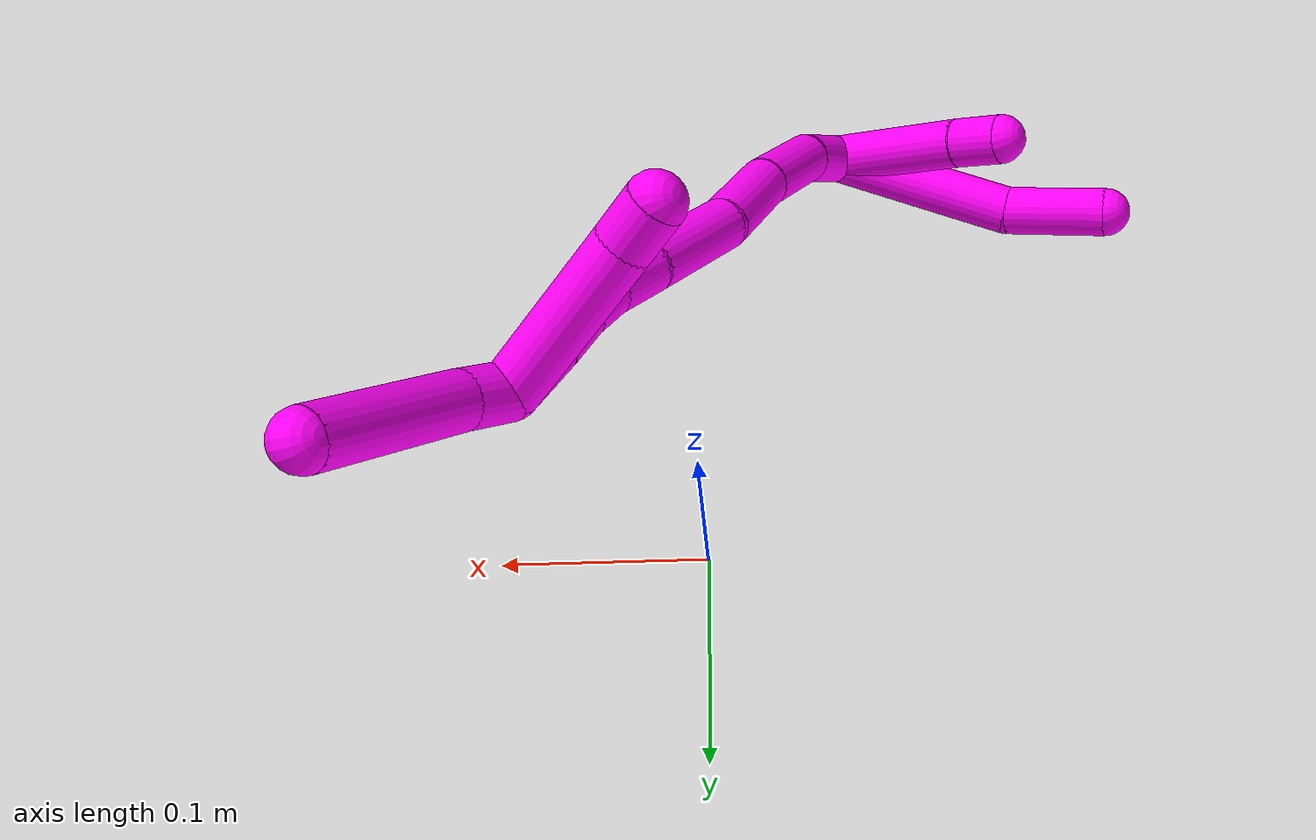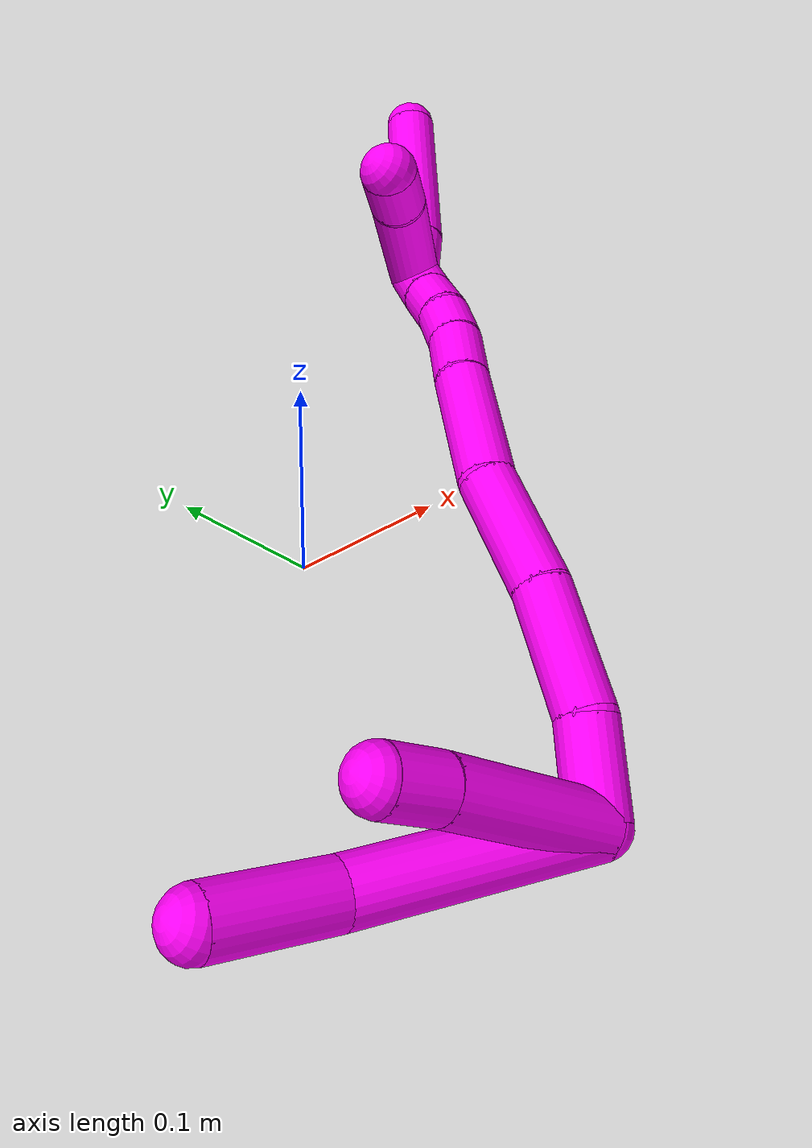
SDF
<sdf version="1.7">
 <world name="default">
  <model name="10">
   <static>0</static>
   <link name="10">
    <collision name="collision-cylinder-e_1_2_8">
     <pose>-0.018322 0.021084 0.04032 -0.481811 -0.382819 0.095144</pose>
     <geometry><cylinder><radius>0.0125</radius><length>0.098101</length></cylinder></geometry>
     <surface>
      <friction><ode><mu>1.16</mu><mu2>1.16</mu2><slip1>0</slip1><slip2>0</slip2></ode></friction>
      <contact><ode><kp>1e+06</kp><kd>1</kd><max_vel>0</max_vel><min_depth>0.001</min_depth></ode></contact>
     </surface>
    </collision>
    <visual name="visual-cylinder-e_1_2_8">
     <pose>-0.018322 0.021084 0.04032 -0.481811 -0.382819 0.095144</pose>
     <geometry><cylinder><radius>0.0125</radius><length>0.098101</length></cylinder></geometry>
     <material><ambient>1 0 0.964706 1</ambient></material>
    </visual>
    <collision name="collision-cylinder-e_2_8_6">
     <pose>-0.044265 0.046923 0.104986 -0.192871 -0.298077 0.029048</pose>
     <geometry><cylinder><radius>0.0125</radius><length>0.051899</length></cylinder></geometry>
     <surface>
      <friction><ode><mu>1.16</mu><mu2>1.16</mu2><slip1>0</slip1><slip2>0</slip2></ode></friction>
      <contact><ode><kp>1e+06</kp><kd>1</kd><max_vel>0</max_vel><min_depth>0.001</min_depth></ode></contact>
     </surface>
    </collision>
    <visual name="visual-cylinder-e_2_8_6">
     <pose>-0.044265 0.046923 0.104986 -0.192871 -0.298077 0.029048</pose>
     <geometry><cylinder><radius>0.0125</radius><length>0.051899</length></cylinder></geometry>
     <material><ambient>1 0 0.964706 1</ambient></material>
    </visual>
    <collision name="collision-cylinder-e_1_2_9">
     <pose>-0.000259 0.004686 0.037329 -0.124886 -0.006894 0.000431</pose>
     <geometry><cylinder><radius>0.0125</radius><length>0.075245</length></cylinder></geometry>
     <surface>
      <friction><ode><mu>1.16</mu><mu2>1.16</mu2><slip1>0</slip1><slip2>0</slip2></ode></friction>
      <contact><ode><kp>1e+06</kp><kd>1</kd><max_vel>0</max_vel><min_depth>0.001</min_depth></ode></contact>
     </surface>
    </collision>
    <visual name="visual-cylinder-e_1_2_9">
     <pose>-0.000259 0.004686 0.037329 -0.124886 -0.006894 0.000431</pose>
     <geometry><cylinder><radius>0.0125</radius><length>0.075245</length></cylinder></geometry>
     <material><ambient>1 0 0.964706 1</ambient></material>
    </visual>
    <collision name="collision-cylinder-e_2_9_5">
     <pose>-0.001351 0.011218 0.086868 -0.149975 -0.067317 0.005059</pose>
     <geometry><cylinder><radius>0.0125</radius><length>0.024755</length></cylinder></geometry>
     <surface>
      <friction><ode><mu>1.16</mu><mu2>1.16</mu2><slip1>0</slip1><slip2>0</slip2></ode></friction>
      <contact><ode><kp>1e+06</kp><kd>1</kd><max_vel>0</max_vel><min_depth>0.001</min_depth></ode></contact>
     </surface>
    </collision>
    <visual name="visual-cylinder-e_2_9_5">
     <pose>-0.001351 0.011218 0.086868 -0.149975 -0.067317 0.005059</pose>
     <geometry><cylinder><radius>0.0125</radius><length>0.024755</length></cylinder></geometry>
     <material><ambient>1 0 0.964706 1</ambient></material>
    </visual>
    <collision name="collision-cylinder-e_1_2_10">
     <pose>0.018654 0.003182 0.002129 -0.981148 1.36838 -0.821701</pose>
     <geometry><cylinder><radius>0.0125</radius><length>0.038086</length></cylinder></geometry>
     <surface>
      <friction><ode><mu>1.16</mu><mu2>1.16</mu2><slip1>0</slip1><slip2>0</slip2></ode></friction>
      <contact><ode><kp>1e+06</kp><kd>1</kd><max_vel>0</max_vel><min_depth>0.001</min_depth></ode></contact>
     </surface>
    </collision>
    <visual name="visual-cylinder-e_1_2_10">
     <pose>0.018654 0.003182 0.002129 -0.981148 1.36838 -0.821701</pose>
     <geometry><cylinder><radius>0.0125</radius><length>0.038086</length></cylinder></geometry>
     <material><ambient>1 0 0.964706 1</ambient></material>
    </visual>
    <collision name="collision-cylinder-e_2_10_11">
     <pose>0.061663 0.017264 0.007483 -1.28306 1.1341 -0.887964</pose>
     <geometry><cylinder><radius>0.0125</radius><length>0.053753</length></cylinder></geometry>
     <surface>
      <friction><ode><mu>1.16</mu><mu2>1.16</mu2><slip1>0</slip1><slip2>0</slip2></ode></friction>
      <contact><ode><kp>1e+06</kp><kd>1</kd><max_vel>0</max_vel><min_depth>0.001</min_depth></ode></contact>
     </surface>
    </collision>
    <visual name="visual-cylinder-e_2_10_11">
     <pose>0.061663 0.017264 0.007483 -1.28306 1.1341 -0.887964</pose>
     <geometry><cylinder><radius>0.0125</radius><length>0.053753</length></cylinder></geometry>
     <material><ambient>1 0 0.964706 1</ambient></material>
    </visual>
    <collision name="collision-cylinder-e_3_11_12">
     <pose>0.108827 0.042102 0.014824 -1.28374 1.00352 -0.778272</pose>
     <geometry><cylinder><radius>0.0125</radius><length>0.054093</length></cylinder></geometry>
     <surface>
      <friction><ode><mu>1.16</mu><mu2>1.16</mu2><slip1>0</slip1><slip2>0</slip2></ode></friction>
      <contact><ode><kp>1e+06</kp><kd>1</kd><max_vel>0</max_vel><min_depth>0.001</min_depth></ode></contact>
     </surface>
    </collision>
    <visual name="visual-cylinder-e_3_11_12">
     <pose>0.108827 0.042102 0.014824 -1.28374 1.00352 -0.778272</pose>
     <geometry><cylinder><radius>0.0125</radius><length>0.054093</length></cylinder></geometry>
     <material><ambient>1 0 0.964706 1</ambient></material>
    </visual>
    <collision name="collision-cylinder-e_4_12_13">
     <pose>0.157719 0.068204 0.017926 -1.65388 1.13311 -1.20972</pose>
     <geometry><cylinder><radius>0.0125</radius><length>0.057592</length></cylinder></geometry>
     <surface>
      <friction><ode><mu>1.16</mu><mu2>1.16</mu2><slip1>0</slip1><slip2>0</slip2></ode></friction>
      <contact><ode><kp>1e+06</kp><kd>1</kd><max_vel>0</max_vel><min_depth>0.001</min_depth></ode></contact>
     </surface>
    </collision>
    <visual name="visual-cylinder-e_4_12_13">
     <pose>0.157719 0.068204 0.017926 -1.65388 1.13311 -1.20972</pose>
     <geometry><cylinder><radius>0.0125</radius><length>0.057592</length></cylinder></geometry>
     <material><ambient>1 0 0.964706 1</ambient></material>
    </visual>
    <collision name="collision-cylinder-e_5_13_14">
     <pose>0.195844 0.086169 0.015109 -1.87226 1.10352 -1.39261</pose>
     <geometry><cylinder><radius>0.0125</radius><length>0.026978</length></cylinder></geometry>
     <surface>
      <friction><ode><mu>1.16</mu><mu2>1.16</mu2><slip1>0</slip1><slip2>0</slip2></ode></friction>
      <contact><ode><kp>1e+06</kp><kd>1</kd><max_vel>0</max_vel><min_depth>0.001</min_depth></ode></contact>
     </surface>
    </collision>
    <visual name="visual-cylinder-e_5_13_14">
     <pose>0.195844 0.086169 0.015109 -1.87226 1.10352 -1.39261</pose>
     <geometry><cylinder><radius>0.0125</radius><length>0.026978</length></cylinder></geometry>
     <material><ambient>1 0 0.964706 1</ambient></material>
    </visual>
    <collision name="collision-cylinder-e_6_14_15">
     <pose>0.216318 0.0975 0.012729 -1.67461 0.987896 -1.07714</pose>
     <geometry><cylinder><radius>0.0125</radius><length>0.020197</length></cylinder></geometry>
     <surface>
      <friction><ode><mu>1.16</mu><mu2>1.16</mu2><slip1>0</slip1><slip2>0</slip2></ode></friction>
      <contact><ode><kp>1e+06</kp><kd>1</kd><max_vel>0</max_vel><min_depth>0.001</min_depth></ode></contact>
     </surface>
    </collision>
    <visual name="visual-cylinder-e_6_14_15">
     <pose>0.216318 0.0975 0.012729 -1.67461 0.987896 -1.07714</pose>
     <geometry><cylinder><radius>0.0125</radius><length>0.020197</length></cylinder></geometry>
     <material><ambient>1 0 0.964706 1</ambient></material>
    </visual>
    <collision name="collision-cylinder-e_7_15_16">
     <pose>0.232473 0.110261 0.011003 -1.7284 0.812076 -0.933129</pose>
     <geometry><cylinder><radius>0.0125</radius><length>0.021287</length></cylinder></geometry>
     <surface>
      <friction><ode><mu>1.16</mu><mu2>1.16</mu2><slip1>0</slip1><slip2>0</slip2></ode></friction>
      <contact><ode><kp>1e+06</kp><kd>1</kd><max_vel>0</max_vel><min_depth>0.001</min_depth></ode></contact>
     </surface>
    </collision>
    <visual name="visual-cylinder-e_7_15_16">
     <pose>0.232473 0.110261 0.011003 -1.7284 0.812076 -0.933129</pose>
     <geometry><cylinder><radius>0.0125</radius><length>0.021287</length></cylinder></geometry>
     <material><ambient>1 0 0.964706 1</ambient></material>
    </visual>
    <collision name="collision-cylinder-e_8_16_1">
     <pose>0.250437 0.126773 0.007572 -1.81186 0.819872 -1.01232</pose>
     <geometry><cylinder><radius>0.0125</radius><length>0.028013</length></cylinder></geometry>
     <surface>
      <friction><ode><mu>1.16</mu><mu2>1.16</mu2><slip1>0</slip1><slip2>0</slip2></ode></friction>
      <contact><ode><kp>1e+06</kp><kd>1</kd><max_vel>0</max_vel><min_depth>0.001</min_depth></ode></contact>
     </surface>
    </collision>
    <visual name="visual-cylinder-e_8_16_1">
     <pose>0.250437 0.126773 0.007572 -1.81186 0.819872 -1.01232</pose>
     <geometry><cylinder><radius>0.0125</radius><length>0.028013</length></cylinder></geometry>
     <material><ambient>1 0 0.964706 1</ambient></material>
    </visual>
    <collision name="collision-cylinder-e_1_1_17">
     <pose>0.272258 0.137913 0.004186 -2.10701 1.38616 -1.94032</pose>
     <geometry><cylinder><radius>0.0125</radius><length>0.023563</length></cylinder></geometry>
     <surface>
      <friction><ode><mu>1.16</mu><mu2>1.16</mu2><slip1>0</slip1><slip2>0</slip2></ode></friction>
      <contact><ode><kp>1e+06</kp><kd>1</kd><max_vel>0</max_vel><min_depth>0.001</min_depth></ode></contact>
     </surface>
    </collision>
    <visual name="visual-cylinder-e_1_1_17">
     <pose>0.272258 0.137913 0.004186 -2.10701 1.38616 -1.94032</pose>
     <geometry><cylinder><radius>0.0125</radius><length>0.023563</length></cylinder></geometry>
     <material><ambient>1 0 0.964706 1</ambient></material>
    </visual>
    <collision name="collision-cylinder-e_2_17_4">
     <pose>0.321165 0.147582 0.005618 -1.25665 1.35425 -1.05727</pose>
     <geometry><cylinder><radius>0.0125</radius><length>0.076437</length></cylinder></geometry>
     <surface>
      <friction><ode><mu>1.16</mu><mu2>1.16</mu2><slip1>0</slip1><slip2>0</slip2></ode></friction>
      <contact><ode><kp>1e+06</kp><kd>1</kd><max_vel>0</max_vel><min_depth>0.001</min_depth></ode></contact>
     </surface>
    </collision>
    <visual name="visual-cylinder-e_2_17_4">
     <pose>0.321165 0.147582 0.005618 -1.25665 1.35425 -1.05727</pose>
     <geometry><cylinder><radius>0.0125</radius><length>0.076437</length></cylinder></geometry>
     <material><ambient>1 0 0.964706 1</ambient></material>
    </visual>
    <collision name="collision-cylinder-e_1_1_18">
     <pose>0.256929 0.112249 0.035527 0.666944 -0.097069 -0.033649</pose>
     <geometry><cylinder><radius>0.0125</radius><length>0.077327</length></cylinder></geometry>
     <surface>
      <friction><ode><mu>1.16</mu><mu2>1.16</mu2><slip1>0</slip1><slip2>0</slip2></ode></friction>
      <contact><ode><kp>1e+06</kp><kd>1</kd><max_vel>0</max_vel><min_depth>0.001</min_depth></ode></contact>
     </surface>
    </collision>
    <visual name="visual-cylinder-e_1_1_18">
     <pose>0.256929 0.112249 0.035527 0.666944 -0.097069 -0.033649</pose>
     <geometry><cylinder><radius>0.0125</radius><length>0.077327</length></cylinder></geometry>
     <material><ambient>1 0 0.964706 1</ambient></material>
    </visual>
    <collision name="collision-cylinder-e_2_18_3">
     <pose>0.253511 0.08225 0.07525 0.57845 0.029056 0.008647</pose>
     <geometry><cylinder><radius>0.0125</radius><length>0.022673</length></cylinder></geometry>
     <surface>
      <friction><ode><mu>1.16</mu><mu2>1.16</mu2><slip1>0</slip1><slip2>0</slip2></ode></friction>
      <contact><ode><kp>1e+06</kp><kd>1</kd><max_vel>0</max_vel><min_depth>0.001</min_depth></ode></contact>
     </surface>
    </collision>
    <visual name="visual-cylinder-e_2_18_3">
     <pose>0.253511 0.08225 0.07525 0.57845 0.029056 0.008647</pose>
     <geometry><cylinder><radius>0.0125</radius><length>0.022673</length></cylinder></geometry>
     <material><ambient>1 0 0.964706 1</ambient></material>
    </visual>
    <collision name="collision-sphere-3">
     <pose>0.253841 0.076055 0.084738 0 -0 0</pose>
     <geometry><sphere><radius>0.0125</radius></sphere></geometry>
     <surface>
      <friction><ode><mu>1.16</mu><mu2>1.16</mu2><slip1>0</slip1><slip2>0</slip2></ode></friction>
      <contact><ode><kp>1e+06</kp><kd>1</kd><max_vel>0</max_vel><min_depth>0.001</min_depth></ode></contact>
     </surface>
    </collision>
    <visual name="visual-sphere-3">
     <pose>0.253841 0.076055 0.084738 0 -0 0</pose>
     <geometry><sphere><radius>0.0125</radius></sphere></geometry>
     <material><ambient>1 0 0.964706 1</ambient></material>
    </visual>
    <collision name="collision-sphere-10">
     <pose>0.037308 0.006364 0.004258 0 -0 0</pose>
     <geometry><sphere><radius>0.0125</radius></sphere></geometry>
     <surface>
      <friction><ode><mu>1.16</mu><mu2>1.16</mu2><slip1>0</slip1><slip2>0</slip2></ode></friction>
      <contact><ode><kp>1e+06</kp><kd>1</kd><max_vel>0</max_vel><min_depth>0.001</min_depth></ode></contact>
     </surface>
    </collision>
    <visual name="visual-sphere-10">
     <pose>0.037308 0.006364 0.004258 0 -0 0</pose>
     <geometry><sphere><radius>0.0125</radius></sphere></geometry>
     <material><ambient>1 0 0.964706 1</ambient></material>
    </visual>
    <collision name="collision-sphere-5">
     <pose>-0.002184 0.013063 0.099079 0 -0 0</pose>
     <geometry><sphere><radius>0.0125</radius></sphere></geometry>
     <surface>
      <friction><ode><mu>1.16</mu><mu2>1.16</mu2><slip1>0</slip1><slip2>0</slip2></ode></friction>
      <contact><ode><kp>1e+06</kp><kd>1</kd><max_vel>0</max_vel><min_depth>0.001</min_depth></ode></contact>
     </surface>
    </collision>
    <visual name="visual-sphere-5">
     <pose>-0.002184 0.013063 0.099079 0 -0 0</pose>
     <geometry><sphere><radius>0.0125</radius></sphere></geometry>
     <material><ambient>1 0 0.964706 1</ambient></material>
    </visual>
    <collision name="collision-sphere-6">
     <pose>-0.051886 0.051677 0.129331 0 -0 0</pose>
     <geometry><sphere><radius>0.0125</radius></sphere></geometry>
     <surface>
      <friction><ode><mu>1.16</mu><mu2>1.16</mu2><slip1>0</slip1><slip2>0</slip2></ode></friction>
      <contact><ode><kp>1e+06</kp><kd>1</kd><max_vel>0</max_vel><min_depth>0.001</min_depth></ode></contact>
     </surface>
    </collision>
    <visual name="visual-sphere-6">
     <pose>-0.051886 0.051677 0.129331 0 -0 0</pose>
     <geometry><sphere><radius>0.0125</radius></sphere></geometry>
     <material><ambient>1 0 0.964706 1</ambient></material>
    </visual>
    <collision name="collision-sphere-9">
     <pose>-0.000519 0.009373 0.074658 0 -0 0</pose>
     <geometry><sphere><radius>0.0125</radius></sphere></geometry>
     <surface>
      <friction><ode><mu>1.16</mu><mu2>1.16</mu2><slip1>0</slip1><slip2>0</slip2></ode></friction>
      <contact><ode><kp>1e+06</kp><kd>1</kd><max_vel>0</max_vel><min_depth>0.001</min_depth></ode></contact>
     </surface>
    </collision>
    <visual name="visual-sphere-9">
     <pose>-0.000519 0.009373 0.074658 0 -0 0</pose>
     <geometry><sphere><radius>0.0125</radius></sphere></geometry>
     <material><ambient>1 0 0.964706 1</ambient></material>
    </visual>
    <collision name="collision-sphere-2">
     <geometry><sphere><radius>0.0125</radius></sphere></geometry>
     <surface>
      <friction><ode><mu>1.16</mu><mu2>1.16</mu2><slip1>0</slip1><slip2>0</slip2></ode></friction>
      <contact><ode><kp>1e+06</kp><kd>1</kd><max_vel>0</max_vel><min_depth>0.001</min_depth></ode></contact>
     </surface>
    </collision>
    <visual name="visual-sphere-2">
     <geometry><sphere><radius>0.0125</radius></sphere></geometry>
     <material><ambient>1 0 0.964706 1</ambient></material>
    </visual>
    <collision name="collision-sphere-8">
     <pose>-0.036644 0.042168 0.08064 0 -0 0</pose>
     <geometry><sphere><radius>0.0125</radius></sphere></geometry>
     <surface>
      <friction><ode><mu>1.16</mu><mu2>1.16</mu2><slip1>0</slip1><slip2>0</slip2></ode></friction>
      <contact><ode><kp>1e+06</kp><kd>1</kd><max_vel>0</max_vel><min_depth>0.001</min_depth></ode></contact>
     </surface>
    </collision>
    <visual name="visual-sphere-8">
     <pose>-0.036644 0.042168 0.08064 0 -0 0</pose>
     <geometry><sphere><radius>0.0125</radius></sphere></geometry>
     <material><ambient>1 0 0.964706 1</ambient></material>
    </visual>
    <collision name="collision-sphere-11">
     <pose>0.086017 0.028164 0.010709 0 -0 0</pose>
     <geometry><sphere><radius>0.0125</radius></sphere></geometry>
     <surface>
      <friction><ode><mu>1.16</mu><mu2>1.16</mu2><slip1>0</slip1><slip2>0</slip2></ode></friction>
      <contact><ode><kp>1e+06</kp><kd>1</kd><max_vel>0</max_vel><min_depth>0.001</min_depth></ode></contact>
     </surface>
    </collision>
    <visual name="visual-sphere-11">
     <pose>0.086017 0.028164 0.010709 0 -0 0</pose>
     <geometry><sphere><radius>0.0125</radius></sphere></geometry>
     <material><ambient>1 0 0.964706 1</ambient></material>
    </visual>
    <collision name="collision-sphere-12">
     <pose>0.131637 0.056041 0.018939 0 -0 0</pose>
     <geometry><sphere><radius>0.0125</radius></sphere></geometry>
     <surface>
      <friction><ode><mu>1.16</mu><mu2>1.16</mu2><slip1>0</slip1><slip2>0</slip2></ode></friction>
      <contact><ode><kp>1e+06</kp><kd>1</kd><max_vel>0</max_vel><min_depth>0.001</min_depth></ode></contact>
     </surface>
    </collision>
    <visual name="visual-sphere-12">
     <pose>0.131637 0.056041 0.018939 0 -0 0</pose>
     <geometry><sphere><radius>0.0125</radius></sphere></geometry>
     <material><ambient>1 0 0.964706 1</ambient></material>
    </visual>
    <collision name="collision-sphere-13">
     <pose>0.183801 0.080367 0.016913 0 -0 0</pose>
     <geometry><sphere><radius>0.0125</radius></sphere></geometry>
     <surface>
      <friction><ode><mu>1.16</mu><mu2>1.16</mu2><slip1>0</slip1><slip2>0</slip2></ode></friction>
      <contact><ode><kp>1e+06</kp><kd>1</kd><max_vel>0</max_vel><min_depth>0.001</min_depth></ode></contact>
     </surface>
    </collision>
    <visual name="visual-sphere-13">
     <pose>0.183801 0.080367 0.016913 0 -0 0</pose>
     <geometry><sphere><radius>0.0125</radius></sphere></geometry>
     <material><ambient>1 0 0.964706 1</ambient></material>
    </visual>
    <collision name="collision-sphere-14">
     <pose>0.207887 0.091971 0.013305 0 -0 0</pose>
     <geometry><sphere><radius>0.0125</radius></sphere></geometry>
     <surface>
      <friction><ode><mu>1.16</mu><mu2>1.16</mu2><slip1>0</slip1><slip2>0</slip2></ode></friction>
      <contact><ode><kp>1e+06</kp><kd>1</kd><max_vel>0</max_vel><min_depth>0.001</min_depth></ode></contact>
     </surface>
    </collision>
    <visual name="visual-sphere-14">
     <pose>0.207887 0.091971 0.013305 0 -0 0</pose>
     <geometry><sphere><radius>0.0125</radius></sphere></geometry>
     <material><ambient>1 0 0.964706 1</ambient></material>
    </visual>
    <collision name="collision-sphere-15">
     <pose>0.224749 0.103029 0.012153 0 -0 0</pose>
     <geometry><sphere><radius>0.0125</radius></sphere></geometry>
     <surface>
      <friction><ode><mu>1.16</mu><mu2>1.16</mu2><slip1>0</slip1><slip2>0</slip2></ode></friction>
      <contact><ode><kp>1e+06</kp><kd>1</kd><max_vel>0</max_vel><min_depth>0.001</min_depth></ode></contact>
     </surface>
    </collision>
    <visual name="visual-sphere-15">
     <pose>0.224749 0.103029 0.012153 0 -0 0</pose>
     <geometry><sphere><radius>0.0125</radius></sphere></geometry>
     <material><ambient>1 0 0.964706 1</ambient></material>
    </visual>
    <collision name="collision-sphere-16">
     <pose>0.240197 0.117493 0.009854 0 -0 0</pose>
     <geometry><sphere><radius>0.0125</radius></sphere></geometry>
     <surface>
      <friction><ode><mu>1.16</mu><mu2>1.16</mu2><slip1>0</slip1><slip2>0</slip2></ode></friction>
      <contact><ode><kp>1e+06</kp><kd>1</kd><max_vel>0</max_vel><min_depth>0.001</min_depth></ode></contact>
     </surface>
    </collision>
    <visual name="visual-sphere-16">
     <pose>0.240197 0.117493 0.009854 0 -0 0</pose>
     <geometry><sphere><radius>0.0125</radius></sphere></geometry>
     <material><ambient>1 0 0.964706 1</ambient></material>
    </visual>
    <collision name="collision-sphere-1">
     <pose>0.260676 0.136054 0.005291 0 -0 0</pose>
     <geometry><sphere><radius>0.0125</radius></sphere></geometry>
     <surface>
      <friction><ode><mu>1.16</mu><mu2>1.16</mu2><slip1>0</slip1><slip2>0</slip2></ode></friction>
      <contact><ode><kp>1e+06</kp><kd>1</kd><max_vel>0</max_vel><min_depth>0.001</min_depth></ode></contact>
     </surface>
    </collision>
    <visual name="visual-sphere-1">
     <pose>0.260676 0.136054 0.005291 0 -0 0</pose>
     <geometry><sphere><radius>0.0125</radius></sphere></geometry>
     <material><ambient>1 0 0.964706 1</ambient></material>
    </visual>
    <collision name="collision-sphere-18">
     <pose>0.253182 0.088445 0.065762 0 -0 0</pose>
     <geometry><sphere><radius>0.0125</radius></sphere></geometry>
     <surface>
      <friction><ode><mu>1.16</mu><mu2>1.16</mu2><slip1>0</slip1><slip2>0</slip2></ode></friction>
      <contact><ode><kp>1e+06</kp><kd>1</kd><max_vel>0</max_vel><min_depth>0.001</min_depth></ode></contact>
     </surface>
    </collision>
    <visual name="visual-sphere-18">
     <pose>0.253182 0.088445 0.065762 0 -0 0</pose>
     <geometry><sphere><radius>0.0125</radius></sphere></geometry>
     <material><ambient>1 0 0.964706 1</ambient></material>
    </visual>
    <collision name="collision-sphere-17">
     <pose>0.283839 0.139772 0.003081 0 -0 0</pose>
     <geometry><sphere><radius>0.0125</radius></sphere></geometry>
     <surface>
      <friction><ode><mu>1.16</mu><mu2>1.16</mu2><slip1>0</slip1><slip2>0</slip2></ode></friction>
      <contact><ode><kp>1e+06</kp><kd>1</kd><max_vel>0</max_vel><min_depth>0.001</min_depth></ode></contact>
     </surface>
    </collision>
    <visual name="visual-sphere-17">
     <pose>0.283839 0.139772 0.003081 0 -0 0</pose>
     <geometry><sphere><radius>0.0125</radius></sphere></geometry>
     <material><ambient>1 0 0.964706 1</ambient></material>
    </visual>
    <collision name="collision-sphere-4">
     <pose>0.358491 0.155392 0.008156 0 -0 0</pose>
     <geometry><sphere><radius>0.0125</radius></sphere></geometry>
     <surface>
      <friction><ode><mu>1.16</mu><mu2>1.16</mu2><slip1>0</slip1><slip2>0</slip2></ode></friction>
      <contact><ode><kp>1e+06</kp><kd>1</kd><max_vel>0</max_vel><min_depth>0.001</min_depth></ode></contact>
     </surface>
    </collision>
    <visual name="visual-sphere-4">
     <pose>0.358491 0.155392 0.008156 0 -0 0</pose>
     <geometry><sphere><radius>0.0125</radius></sphere></geometry>
     <material><ambient>1 0 0.964706 1</ambient></material>
    </visual>
    <inertial>
     <pose>0.124058 0.063541 0.030364 0 -0 0</pose>
     <mass>0.75</mass>
     <inertia>
      <ixx>0.000191</ixx>
      <ixy>0</ixy>
      <ixz>0</ixz>
      <iyy>0.000241</iyy>
      <iyz>0</iyz>
      <izz>-8.6e-05</izz>
     </inertia>
    </inertial>
   </link>
   <pose>-0.073231 -0.230947 0.020144 -0.636562 -0.772188 0.552687</pose>
  </model>
 </world>
</sdf>
